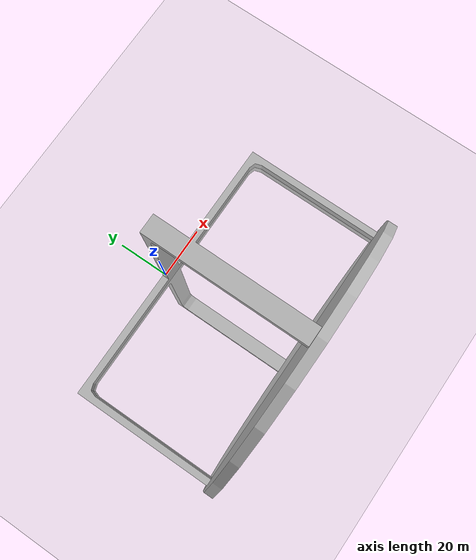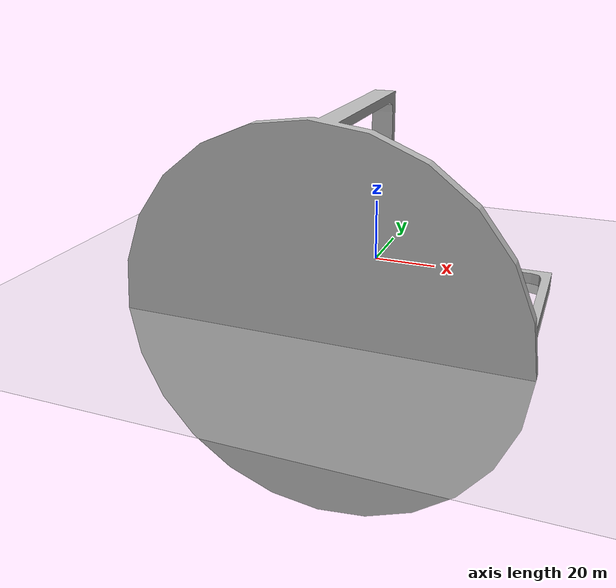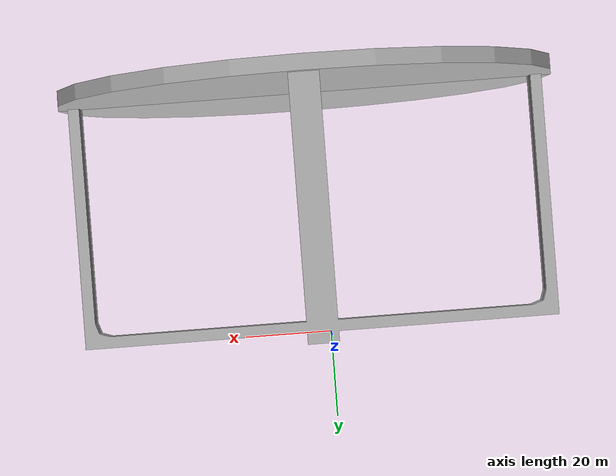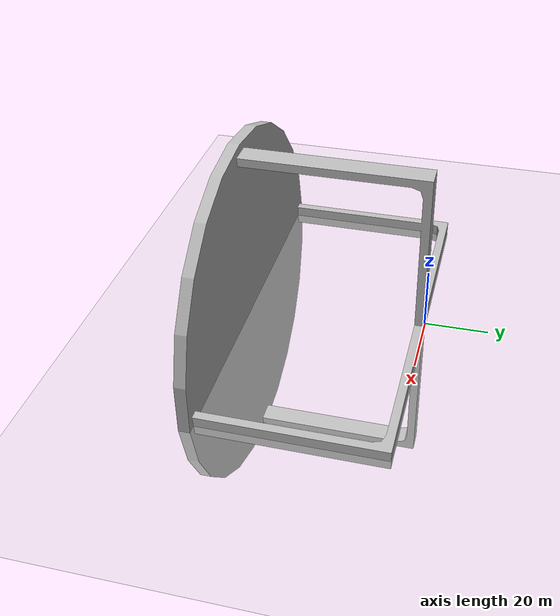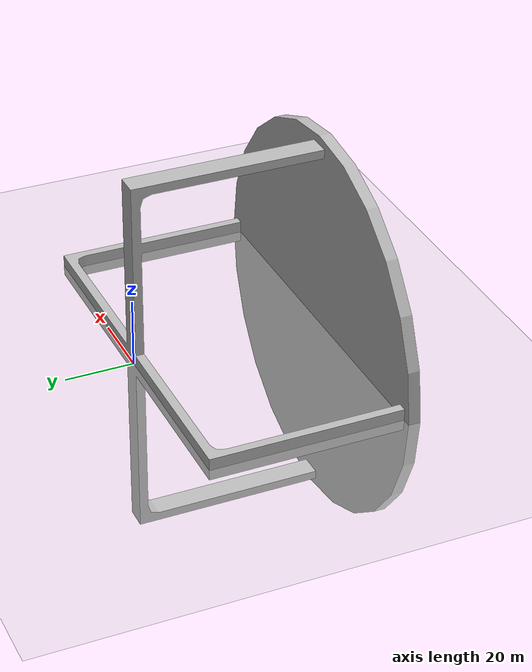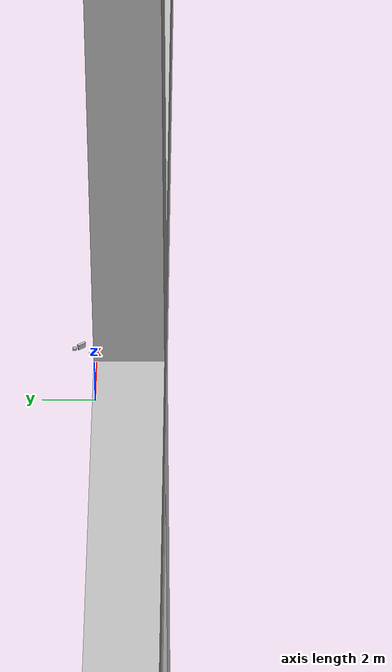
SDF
<?xml version="1.0"?>
<sdf version="1.4">
  <world name="default">
    <include>
      <uri>model://ground_plane</uri>
    </include>
    <include>
      <uri>model://sun</uri>
    </include>
    <include>
      <uri>model://coffeetable</uri>
      <name>table</name>
	  <pose>2.08 0 0  1.5708 0 0</pose>
    </include>
    <include>
      <uri>model://bookshelf</uri>
      <name>bookshelf</name>
	  <pose>2.314 -1.6 0 1.5708 0 0</pose>
    </include>
    <include>
      <uri>model://cracker</uri>
      <name>cracker</name>
	  <pose>2.275 0.442 0.7 0 0 0.587</pose>
    </include>
    <include>
      <uri>model://apple</uri>
      <name>apple</name>
	  <pose>1.82 0.182 0.65 0 0 0</pose>
    </include>
    <include>
      <uri>model://mustard</uri>
      <name>mustard</name>
	  <pose>1.82 -0.078 0.7 0 0 1.5708</pose>
    </include>
    <include>
      <uri>model://potted_meat</uri>
      <name>spam1</name>
	  <pose>2.145 0.832 0.65 0 0 1.5708</pose>
    </include>
    <include>
      <uri>model://potted_meat</uri>
      <name>spam2</name>
	  <pose>2.21 -0.494 0.65 0 0 1.5708</pose>
    </include>
    <include>
      <uri>model://tomatosoup</uri>
      <name>tomato1</name>
	  <pose>1.82 -0.598 2 1.5708 0 1.5708</pose>
    </include>
    <include>
      <uri>model://tomatosoup</uri>
      <name>tomato2</name>
	  <pose>2.21 -0.858 0.65 1.5708 0 1.5708</pose>
    </include>
  </world>
</sdf>

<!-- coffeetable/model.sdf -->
<sdf version="1.4">
  <model name="coffeetable">
    <pose>0 0 0  0 0 0</pose>
    <static>true</static>
    <link name="body">
      <inertial>
        <mass>20</mass>
        <inertia> <!-- inertias are tricky to compute -->
          <!-- http://gazebosim.org/tutorials?tut=inertia&cat=build_robot -->
          <ixx>1</ixx>       <!-- for a box: ixx = 0.083 * mass * (y*y + z*z) -->
          <ixy>000000</ixy>         <!-- for a box: ixy = 0 -->
          <ixz>0.000000</ixz>         <!-- for a box: ixz = 0 -->
          <iyy>1</iyy>       <!-- for a box: iyy = 0.083 * mass * (x*x + z*z) -->
          <iyz>0.000000</iyz>         <!-- for a box: iyz = 0 -->
          <izz>1</izz>       <!-- for a box: izz = 0.083 * mass * (x*x + y*y) -->
        </inertia>
      </inertial>
      <collision name="collision">
        <geometry>
          <mesh>
			  <uri>model://coffeetable/meshes/coffeetable.obj</uri>
			  <scale>1.3 1.3 1.3</scale>
          </mesh>
        </geometry>
      </collision>
      <visual name="visual">
        <geometry>
          <mesh>
			  <uri>model://coffeetable/meshes/coffeetable.obj</uri>
			  <scale>1.3 1.3 1.3</scale>
          </mesh>
        </geometry>
      </visual>
    </link>
  </model>
</sdf>

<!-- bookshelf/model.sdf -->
<sdf version="1.4">
  <model name="bookshelf">
    <pose>0 0 0 0 0 0</pose>
    <static>true</static>
    <link name="body">
      <inertial>
        <mass>20</mass>
        <inertia> <!-- inertias are tricky to compute -->
          <!-- http://gazebosim.org/tutorials?tut=inertia&cat=build_robot -->
          <ixx>1</ixx>       <!-- for a box: ixx = 0.083 * mass * (y*y + z*z) -->
          <ixy>000000</ixy>         <!-- for a box: ixy = 0 -->
          <ixz>0.000000</ixz>         <!-- for a box: ixz = 0 -->
          <iyy>1</iyy>       <!-- for a box: iyy = 0.083 * mass * (x*x + z*z) -->
          <iyz>0.000000</iyz>         <!-- for a box: iyz = 0 -->
          <izz>1</izz>       <!-- for a box: izz = 0.083 * mass * (x*x + y*y) -->
        </inertia>
      </inertial>
      <collision name="collision">
        <geometry>
          <mesh>
			  <uri>model://bookshelf/meshes/bookshelf.obj</uri>
			  <scale>1.0 1.0 1.0</scale>
		  </mesh>
        </geometry>
      </collision>
      <visual name="visual">
        <geometry>
          <mesh>
			  <uri>model://bookshelf/meshes/bookshelf.obj</uri>
			  <scale>1.0 1.0 1.0</scale>
          </mesh>
        </geometry>
      </visual>
    </link>
  </model>
</sdf>

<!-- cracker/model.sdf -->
<sdf version="1.4">
  <model name="cracker">
    <pose>0 0 0  0 0 0</pose>
    <static>0</static>
    <link name="body">
      <inertial>
          <mass>0.411</mass>
          <inertia>
            <ixx>0.002365</ixx>
            <ixy>0.000000</ixy>
            <ixz>0.000000</ixz>
            <iyy>0.001634</iyy>
            <iyz>0.000000</iyz>
            <izz>0.000978</izz>
          </inertia>
        </inertial>
      <collision name="collision">
        <geometry>
          <mesh>
			<uri>model://cracker/meshes/cracker.obj</uri>
			<scale>1.5 1.5 1.5</scale>
          </mesh>
        </geometry>
        <surface>
            <friction>
              <ode>
                <mu>30.0</mu>
                <mu2>30.0</mu2>
              </ode>
            </friction>
            <contact>
              <ode>
                <kp>1000000.0</kp>
                <kd>100.0</kd>
                <max_vel>1.0</max_vel>
                <min_depth>0.002</min_depth>
              </ode>
            </contact>
        </surface>
      </collision>
      <visual name="visual">
        <geometry>
          <mesh>
			<uri>model://cracker/meshes/cracker.obj</uri>
			<scale>1.5 1.5 1.5</scale>
          </mesh>
        </geometry>
      </visual>
      <velocity_decay>
        <linear>0.000000</linear>
        <angular>0.000000</angular>
      </velocity_decay>
      <self_collide>0</self_collide>
      <kinematic>0</kinematic>
      <gravity>1</gravity>
    </link>
  </model>
</sdf>

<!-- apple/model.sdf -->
<sdf version="1.4">
  <model name="apple">
    <pose>0 0 0  1.5708 0 0</pose>
    <static>0</static>
    <link name="body">
      <inertial>
          <mass>0.068</mass>
          <inertia>
            <ixx>0.000064</ixx>
            <ixy>0.000000</ixy>
            <ixz>0.000000</ixz>
            <iyy>0.000064</iyy>
            <iyz>0.000000</iyz>
            <izz>0.000064</izz>
          </inertia>
      </inertial>
      <collision name="collision">
        <geometry>
          <mesh>
			<uri>model://apple/meshes/apple.obj</uri>
			<scale>0.15 0.15 0.15</scale>
          </mesh>
        </geometry>
        <surface>
            <friction>
              <ode>
                <mu>30.0</mu>
                <mu2>30.0</mu2>
              </ode>
            </friction>
            <contact>
              <ode>
                <kp>1000000.0</kp>
                <kd>100.0</kd>
                <max_vel>1.0</max_vel>
                <min_depth>0.002</min_depth>
              </ode>
            </contact>
        </surface>
      </collision>
      <visual name="visual">
        <geometry>
          <mesh>
			<uri>model://apple/meshes/apple.obj</uri>
			<scale>0.15 0.15 0.15</scale>
          </mesh>
        </geometry>
      </visual>
      <velocity_decay>
        <linear>0.000000</linear>
        <angular>0.000000</angular>
      </velocity_decay>
      <self_collide>0</self_collide>
      <kinematic>0</kinematic>
      <gravity>1</gravity>
    </link>
  </model>
</sdf>

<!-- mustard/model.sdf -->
<sdf version="1.4">
  <model name="mustard">
    <pose>0 0 0  0 0 0</pose>
    <static>0</static>
    <link name="body">
      <inertial>
          <mass>0.603</mass>
          <inertia>
            <ixx>0.002268</ixx>
            <ixy>0.000000</ixy>
            <ixz>0.000000</ixz>
            <iyy>0.001983</iyy>
            <iyz>0.000000</iyz>
            <izz>0.000623</izz>
          </inertia>
        </inertial>
      <collision name="collision">
        <geometry>
          <mesh>
			  <uri>model://mustard/meshes/mustard.obj</uri>
			  <scale>0.15 0.15 0.15</scale>
          </mesh>
        </geometry>
        <surface>
            <friction>
              <ode>
                <mu>30.0</mu>
                <mu2>30.0</mu2>
              </ode>
            </friction>
            <contact>
              <ode>
                <kp>1000000.0</kp>
                <kd>100.0</kd>
                <max_vel>1.0</max_vel>
                <min_depth>0.002</min_depth>
              </ode>
            </contact>
        </surface>
      </collision>
      <visual name="visual">
        <geometry>
          <mesh>
			  <uri>model://mustard/meshes/mustard.obj</uri>
			  <scale>0.15 0.15 0.15</scale>
          </mesh>
        </geometry>
      </visual>
      <velocity_decay>
        <linear>0.000000</linear>
        <angular>0.000000</angular>
      </velocity_decay>
      <self_collide>0</self_collide>
      <kinematic>0</kinematic>
      <gravity>1</gravity>
    </link>
  </model>
</sdf>

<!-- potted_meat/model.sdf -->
<sdf version="1.4">
  <model name="potted_meat">
    <pose>0 0 0  0 0 0</pose>
    <static>0</static>
    <link name="body">
      <inertial>
          <mass>0.37</mass>
          <inertia>
            <ixx>0.000497</ixx>
            <ixy>0.000000</ixy>
            <ixz>0.000000</ixz>
            <iyy>0.000284</iyy>
            <iyz>0.000000</iyz>
            <izz>0.000367</izz>
          </inertia>
      </inertial>
      <collision name="collision">
        <geometry>
          <mesh>
			  <uri>model://potted_meat/meshes/potted.obj</uri>
			  <scale>0.15 0.15 0.15</scale>
          </mesh>
        </geometry>
        <surface>
            <friction>
              <ode>
                <mu>30.0</mu>
                <mu2>30.0</mu2>
              </ode>
            </friction>
            <contact>
              <ode>
                <kp>1000000.0</kp>
                <kd>100.0</kd>
                <max_vel>1.0</max_vel>
                <min_depth>0.002</min_depth>
              </ode>
            </contact>
        </surface>
      </collision>
      <visual name="visual">
        <geometry>
          <mesh>
			  <uri>model://potted_meat/meshes/potted.obj</uri>
			  <scale>0.15 0.15 0.15</scale>
          </mesh>
        </geometry>
      </visual>
      <velocity_decay>
        <linear>0.000000</linear>
        <angular>0.000000</angular>
      </velocity_decay>
      <self_collide>0</self_collide>
      <kinematic>0</kinematic>
      <gravity>1</gravity>
    </link>
  </model>
</sdf>

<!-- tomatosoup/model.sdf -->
<sdf version="1.4">
  <model name="tomato_soup">
    <pose>0 0 0  0 0 1.57</pose>
    <static>0</static>
    <link name="body">
      <inertial>
          <mass>0.349</mass>
          <inertia>
            <ixx>0.000423</ixx>
            <ixy>0.000000</ixy>
            <ixz>0.000000</ixz>
            <iyy>0.000423</iyy>
            <iyz>0.000000</iyz>
            <izz>0.000253</izz>
          </inertia>
      </inertial>
      <collision name="collision">
        <geometry>
          <mesh>
			  <uri>model://tomatosoup/meshes/tomato.obj</uri>
			  <scale>0.1 0.1 0.1</scale>
          </mesh>
        </geometry>
        <surface>
            <friction>
              <ode>
                <mu>80.0</mu>
                <mu2>100.0</mu2>
              </ode>
            </friction>
            <contact>
              <ode>
                <kp>1000000.0</kp>
                <kd>100.0</kd>
                <max_vel>1.0</max_vel>
                <min_depth>0.002</min_depth>
              </ode>
            </contact>
        </surface>
      </collision>
      <visual name="visual">
        <geometry>
          <mesh>
			  <uri>model://tomatosoup/meshes/tomato.obj</uri>
			  <scale>0.1 0.1 0.1</scale>
          </mesh>
        </geometry>
      </visual>
      <velocity_decay>
        <linear>0.000000</linear>
        <angular>0.000000</angular>
      </velocity_decay>
      <self_collide>0</self_collide>
      <kinematic>0</kinematic>
      <gravity>1</gravity>
    </link>
  </model>
</sdf>
